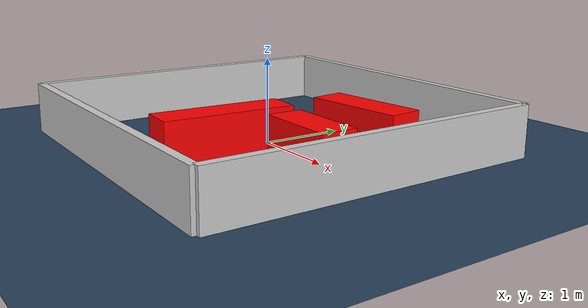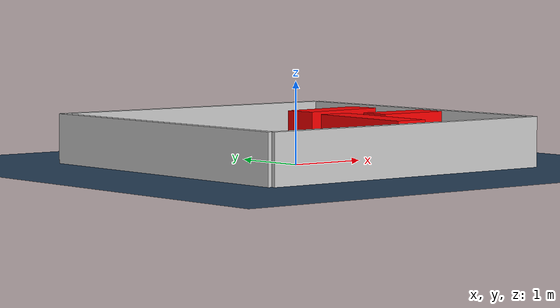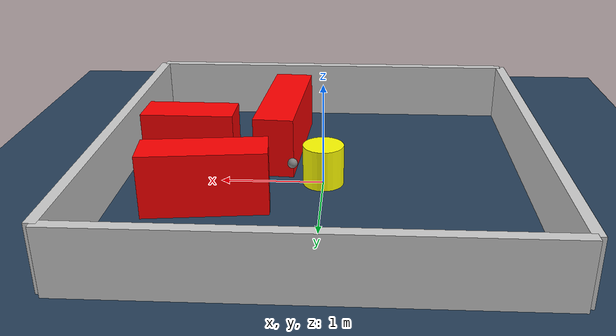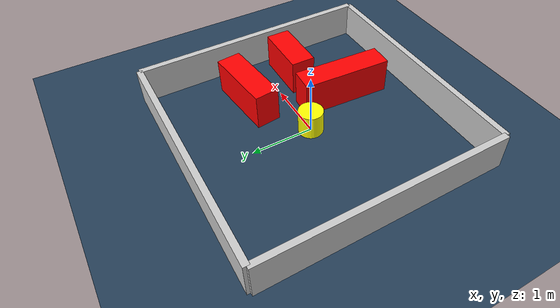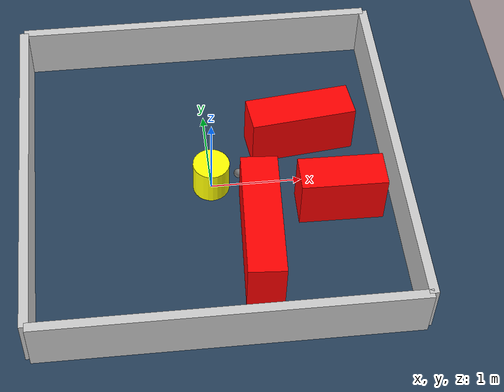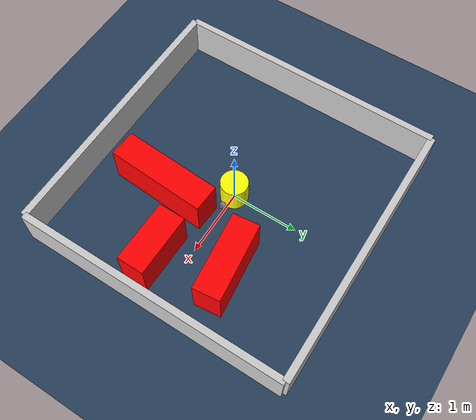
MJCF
<?xml version="1.0" ?>
<mujoco model="generated_environment">
  <option timestep="0.01" integrator="RK4" cone="elliptic"/>
  <default>
    <geom density="1"/>
  </default>
  <asset>
    <texture builtin="gradient" height="3072" rgb1="0.3 0.5 0.7" rgb2="0 0 0" type="skybox" width="512"/>
    <texture builtin="checker" height="300" mark="edge" markrgb="0.8 0.8 0.8" name="groundplane" rgb1="0.2 0.3 0.4" rgb2="0.1 0.2 0.3" type="2d" width="300"/>
    <material name="groundplane" reflectance="0.2" texrepeat="5 5" texture="groundplane" texuniform="true"/>
    <material name="robot" rgba="0.0 1.0 0.0 1"/>
  </asset>
  <worldbody>
    <light dir="0 0 -1" directional="true" pos="0 0 1.5"/>
    <geom condim="4" friction="1.0 0.005 0.001" material="groundplane" name="floor" size="0 0 0.05" type="plane"/>
    <body name="walls">
      <geom name="wall_1" condim="4" pos="-2.0 0.0 0.3" rgba="0.800000011920929 0.800000011920929 0.800000011920929 1.0" size="0.05 2.0 0.3" type="box"/>
      <geom name="wall_2" condim="4" pos="2.0 0.0 0.3" rgba="0.800000011920929 0.800000011920929 0.800000011920929 1.0" size="0.05 2.0 0.3" type="box"/>
      <geom name="wall_3" condim="4" pos="0.0 -2.0 0.3" rgba="0.800000011920929 0.800000011920929 0.800000011920929 1.0" size="2.0 0.05 0.3" type="box"/>
      <geom name="wall_4" condim="4" pos="0.0 2.0 0.3" rgba="0.800000011920929 0.800000011920929 0.800000011920929 1.0" size="2.0 0.05 0.3" type="box"/>
    </body>
    <body name="robot">
      <joint name="joint_x" type="slide" pos="0 0 0" axis="1 0 0"/>
      <joint name="joint_y" type="slide" pos="0 0 0" axis="0 1 0"/>
      <geom name="robot" type="sphere" pos="0.3 0.0 0.2" size="0.05" mass="5." friction="1.0 0.005 0.0001" condim="4" rgba="0.5 0.5 0.5 1.0"/>
      <site name="sensor_ball"/>
    </body>
    <body name="obstacle_movable_1">
      <geom name="obstacle_movable_1" condim="4" pos="0.0 0.0 0.2" euler="0 0 0.0" friction="1.0 0.005 0.001" rgba="1.0 1.0 0.0 1.0" size="0.2 0.2 0.0" type="cylinder" mass="0.1"/>
      <joint type="free"/>
    </body>
    <body name="obstacle_2_static">
      <geom name="obstacle_2_static" condim="4" pos="1.0468395619586246 0.5582111960515179 0.3" euler="0 0 6.528589693562261" friction="1.0 0.005 0.001" rgba="1 0 0 1" size="0.579632355540862 0.2 0.3" type="box"/>
    </body>
    <body name="obstacle_3_static">
      <geom name="obstacle_3_static" condim="4" pos="1.3627059772408954 -0.394901658381696 0.3" euler="0 0 359.36458662491054" friction="1.0 0.005 0.001" rgba="1 0 0 1" size="0.4595467889190048 0.2 0.3" type="box"/>
    </body>
    <body name="obstacle_4_static">
      <geom name="obstacle_4_static" condim="4" pos="0.4546818141312403 -0.8553374342947485 0.3" euler="0 0 266.4946440263886" friction="1.0 0.005 0.001" rgba="1 0 0 1" size="0.73967633533057 0.2 0.3" type="box"/>
    </body>
  </worldbody>
  <actuator>
    <motor name="actuator_x" joint="joint_x" gear="1" ctrlrange="-1 1"/>
    <motor name="actuator_y" joint="joint_y" gear="1" ctrlrange="-1 1"/>
  </actuator>
</mujoco>
